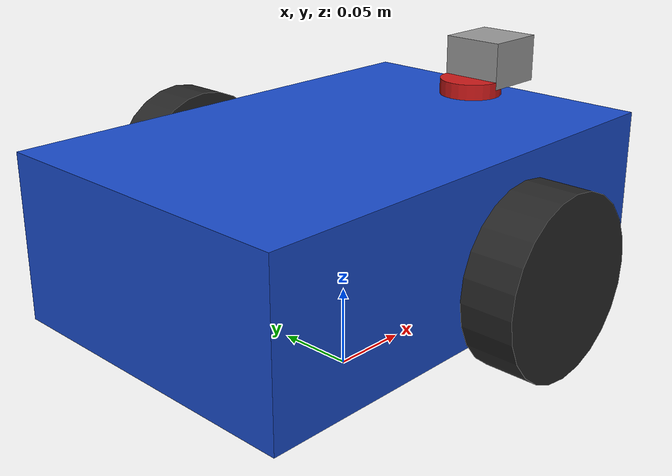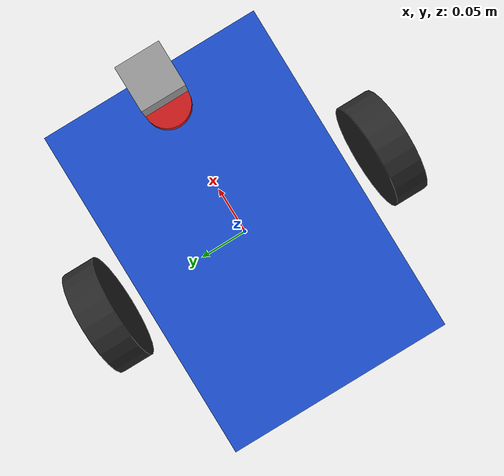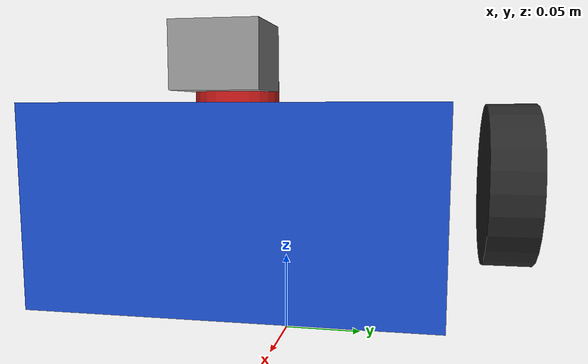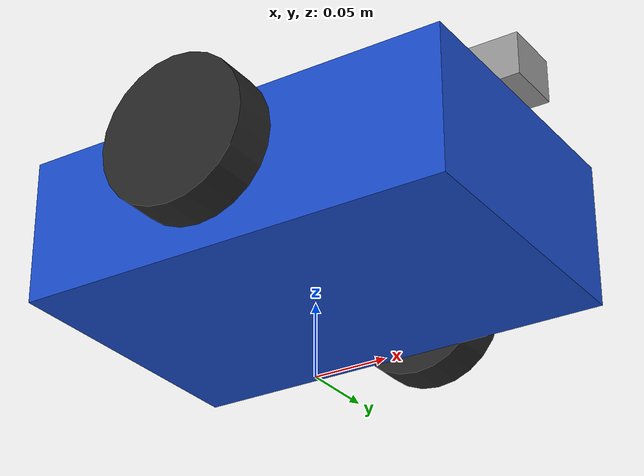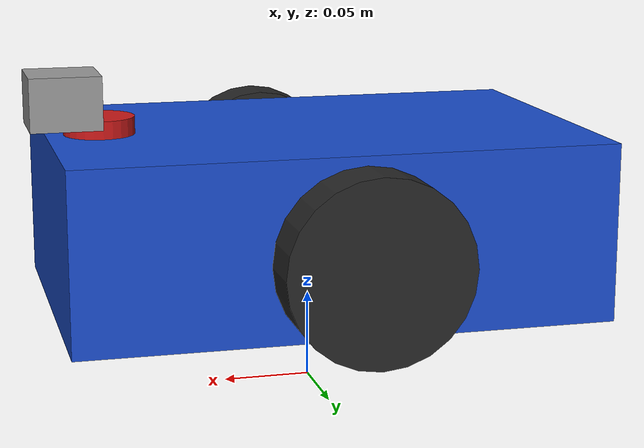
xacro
<?xml version="1.0"?>

<robot name="diff_drive_robot"
       xmlns:xacro="http://www.ros.org/wiki/xacro">

  <xacro:include filename="materials.xacro"/>
  <xacro:include filename="inertia_macros.xacro"/>
  <xacro:include filename="base.xacro"/>
  <xacro:include filename="wheels.xacro"/>
  <xacro:include filename="caster.xacro"/>
  <xacro:include filename="laser.xacro"/>
  <xacro:include filename="camera.xacro"/>
  <xacro:include filename="imu.xacro"/>
  <xacro:include filename="gazebo.xacro"/>
  <xacro:include filename="ros2_control.xacro"/>

</robot>

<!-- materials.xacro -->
<robot xmlns:xacro="http://www.ros.org/wiki/xacro">

  <!-- Robot Colors -->

  <material name="blue">
    <color rgba="0.1 0.3 0.8 1.0"/>
  </material>

  <material name="black">
    <color rgba="0.15 0.15 0.15 1.0"/>
  </material>

  <material name="grey">
    <color rgba="0.6 0.6 0.6 1.0"/>
  </material>

  <material name="red">
    <color rgba="0.8 0.1 0.1 1.0"/>
  </material>

  <material name="white">
    <color rgba="1 1 1 1"/>
  </material>

</robot>

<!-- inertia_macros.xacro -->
<robot xmlns:xacro="http://www.ros.org/wiki/xacro">

  <!-- Box Inertia -->
  <xacro:macro name="box_inertia" params="mass x y z">

    <inertial>

      <mass value="${mass}"/>

      <origin xyz="0 0 0" rpy="0 0 0"/>

      <inertia
        ixx="${(mass/12.0)*(y*y+z*z)}"
        ixy="0.0"
        ixz="0.0"
        iyy="${(mass/12.0)*(x*x+z*z)}"
        iyz="0.0"
        izz="${(mass/12.0)*(x*x+y*y)}"/>

    </inertial>

  </xacro:macro>

  <!-- Cylinder Inertia -->

  <xacro:macro name="cylinder_inertia" params="mass radius length">

    <inertial>

      <mass value="${mass}"/>

      <origin xyz="0 0 0" rpy="0 0 0"/>

      <inertia
        ixx="${(mass/12.0)*(3*radius*radius+length*length)}"
        ixy="0.0"
        ixz="0.0"
        iyy="${(mass/12.0)*(3*radius*radius+length*length)}"
        iyz="0.0"
        izz="${0.5*mass*radius*radius}"/>

    </inertial>

  </xacro:macro>

</robot>

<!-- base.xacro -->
<robot xmlns:xacro="http://www.ros.org/wiki/xacro">

  <!-- Robot Dimensions -->
  <xacro:property name="base_length" value="0.30"/>
  <xacro:property name="base_width"  value="0.20"/>
  <xacro:property name="base_height" value="0.10"/>

  <!-- Base Footprint -->
  <link name="base_footprint"/>

  <joint name="base_footprint_joint" type="fixed">
    	<parent link="base_footprint"/>
    	<child link="base_link"/>
    	<origin xyz="0 0 0.05" rpy="0 0 0"/>
  </joint>

  <!-- Base Link -->
  <link name="base_link">

    <visual>
      <origin xyz="0 0 ${base_height/2}" rpy="0 0 0"/>
      <geometry>
        <box size="${base_length} ${base_width} ${base_height}"/>
      </geometry>
      <material name="blue"/>
    </visual>

    <collision>
      <origin xyz="0 0 ${base_height/2}" rpy="0 0 0"/>
      <geometry>
        <box size="${base_length} ${base_width} ${base_height}"/>
      </geometry>
    </collision>

    <xacro:box_inertia
      mass="5.0"
      x="${base_length}"
      y="${base_width}"
      z="${base_height}"/>

  </link>

</robot>

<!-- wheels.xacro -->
<robot xmlns:xacro="http://www.ros.org/wiki/xacro">

  <!-- Wheel Dimensions -->
  <xacro:property name="wheel_radius" value="0.05"/>
  <xacro:property name="wheel_width" value="0.03"/>
  <xacro:property name="wheel_offset_y" value="0.14"/>
  <xacro:property name="base_width" value="0.20"/>

  <!-- Left Wheel -->
  <link name="left_wheel">

    <visual>
      <origin xyz="0 0 0" rpy="1.5708 0 0"/>
      <geometry>
        <cylinder radius="${wheel_radius}" length="${wheel_width}"/>
      </geometry>
      <material name="black"/>
    </visual>

    <collision>
      <origin xyz="0 0 0" rpy="1.5708 0 0"/>
      <geometry>
        <cylinder radius="${wheel_radius}" length="${wheel_width}"/>
      </geometry>
    </collision>

    <xacro:cylinder_inertia
      mass="0.5"
      radius="${wheel_radius}"
      length="${wheel_width}"/>

  </link>

  <!-- Right Wheel -->
  <link name="right_wheel">

    <visual>
      <origin xyz="0 0 0" rpy="1.5708 0 0"/>
      <geometry>
        <cylinder radius="${wheel_radius}" length="${wheel_width}"/>
      </geometry>
      <material name="black"/>
    </visual>

    <collision>
      <origin xyz="0 0 0" rpy="1.5708 0 0"/>
      <geometry>
        <cylinder radius="${wheel_radius}" length="${wheel_width}"/>
      </geometry>
    </collision>

    <xacro:cylinder_inertia
      mass="0.5"
      radius="${wheel_radius}"
      length="${wheel_width}"/>

  </link>

  <!-- Left Wheel Joint -->
  <joint name="left_wheel_joint" type="continuous">
    <parent link="base_link"/>
    <child link="left_wheel"/>
    <origin xyz="0 ${wheel_offset_y} 0.05" rpy="0 0 0"/>
    <axis xyz="0 1 0"/>
  </joint>

  <!-- Right Wheel Joint -->
  <joint name="right_wheel_joint" type="continuous">
    <parent link="base_link"/>
    <child link="right_wheel"/>
    <origin xyz="0 -${wheel_offset_y} 0.05" rpy="0 0 0"/>
    <axis xyz="0 1 0"/>
  </joint>

</robot>

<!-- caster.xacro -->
<robot xmlns:xacro="http://www.ros.org/wiki/xacro">

  <!-- Caster Dimensions -->
  <xacro:property name="caster_radius" value="0.025"/>

  <!-- Caster Link -->
  <link name="caster_wheel">

    <visual>
      <origin xyz="0 0 0" rpy="0 0 0"/>
      <geometry>
        <sphere radius="${caster_radius}"/>
      </geometry>
      <material name="grey"/>
    </visual>

    <collision>
      <origin xyz="0 0 0" rpy="0 0 0"/>
      <geometry>
        <sphere radius="${caster_radius}"/>
      </geometry>
    </collision>

    <inertial>
      <mass value="0.2"/>
      <origin xyz="0 0 0"/>
      <inertia
          ixx="0.0001"
          ixy="0"
          ixz="0"
          iyy="0.0001"
          iyz="0"
          izz="0.0001"/>
    </inertial>

  </link>

  <!-- Fixed Joint -->
  <joint name="caster_joint" type="fixed">

    <parent link="base_link"/>
    <child link="caster_wheel"/>

    <!-- Rear bottom of the robot -->
    <origin xyz="-0.11 0 0.025" rpy="0 0 0"/>

  </joint>

</robot>

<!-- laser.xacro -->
<robot xmlns:xacro="http://www.ros.org/wiki/xacro">

  <!-- Laser Frame -->
  <link name="laser_link">

    <visual>
      <origin xyz="0 0 0" rpy="0 0 0"/>
      <geometry>
        <cylinder radius="0.02" length="0.02"/>
      </geometry>
      <material name="red"/>
    </visual>

  </link>

  <joint name="laser_joint" type="fixed">

    <parent link="base_link"/>
    <child link="laser_link"/>

    <!-- Front-top of robot -->
    <origin xyz="0.12 0 0.10" rpy="0 0 0"/>

  </joint>

  <!-- Gazebo LiDAR Sensor -->
  <gazebo reference="laser_link">
    <sensor name="laser_sensor" type="ray">
      <always_on>true</always_on>
      <visualize>true</visualize>
      <update_rate>10</update_rate>

      <ray>
        <scan>
          <horizontal>
            <samples>360</samples>
            <resolution>1</resolution>
            <min_angle>-3.14159</min_angle>
            <max_angle>3.14159</max_angle>
          </horizontal>
        </scan>

        <range>
          <min>0.12</min>
          <max>10.0</max>
          <resolution>0.01</resolution>
        </range>
      </ray>

      <plugin
        name="gazebo_ros_laser_controller"
        filename="libgazebo_ros_ray_sensor.so">

        <ros>
          <remapping>~/out:=scan</remapping>
        </ros>

        <output_type>sensor_msgs/LaserScan</output_type>
        <frame_name>laser_link</frame_name>

      </plugin>
    </sensor>
  </gazebo>

</robot>

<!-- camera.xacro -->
<robot xmlns:xacro="http://www.ros.org/wiki/xacro">

  <!-- Camera Link -->
  <link name="camera_link">

    <visual>
      <origin xyz="0 0 0" rpy="0 0 0"/>
      <geometry>
        <box size="0.04 0.04 0.03"/>
      </geometry>
      <material name="grey"/>
    </visual>

  </link>

  <!-- Camera Joint -->
  <joint name="camera_joint" type="fixed">

    <parent link="base_link"/>
    <child link="camera_link"/>

    <origin xyz="0.14 0 0.12" rpy="0 0 0"/>

  </joint>

  <!-- Gazebo Camera -->
  <gazebo reference="camera_link">

    <sensor name="camera_sensor" type="camera">

      <always_on>true</always_on>
      <visualize>true</visualize>
      <update_rate>30</update_rate>

      <camera>

        <horizontal_fov>1.047</horizontal_fov>

        <image>
          <width>640</width>
          <height>480</height>
          <format>R8G8B8</format>
        </image>

        <clip>
          <near>0.1</near>
          <far>100.0</far>
        </clip>

      </camera>

      <plugin
        name="gazebo_ros_camera"
        filename="libgazebo_ros_camera.so">

        <ros>
          <namespace>/camera</namespace>
        </ros>
        <frame_name>camera_link</frame_name>

      </plugin>

    </sensor>

  </gazebo>

</robot>

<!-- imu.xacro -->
<robot xmlns:xacro="http://www.ros.org/wiki/xacro">

  <!-- IMU Link -->
  <link name="imu_link">

    <visual>
      <origin xyz="0 0 0" rpy="0 0 0"/>
      <geometry>
        <box size="0.025 0.025 0.01"/>
      </geometry>
      <material name="red"/>
    </visual>

  </link>

  <!-- IMU Joint -->
  <joint name="imu_joint" type="fixed">

    <parent link="base_link"/>
    <child link="imu_link"/>

    <!-- Center of robot -->
    <origin xyz="0 0 0.09" rpy="0 0 0"/>

  </joint>

  <!-- Gazebo IMU Sensor -->
  <gazebo reference="imu_link">

    <sensor name="imu_sensor" type="imu">

      <always_on>true</always_on>
      <update_rate>100</update_rate>
      <visualize>true</visualize>

      <plugin
        name="gazebo_ros_imu_sensor"
        filename="libgazebo_ros_imu_sensor.so">

        <ros>
          <namespace>/imu</namespace>
        </ros>

        <frame_name>imu_link</frame_name>

      </plugin>

    </sensor>

  </gazebo>

</robot>
